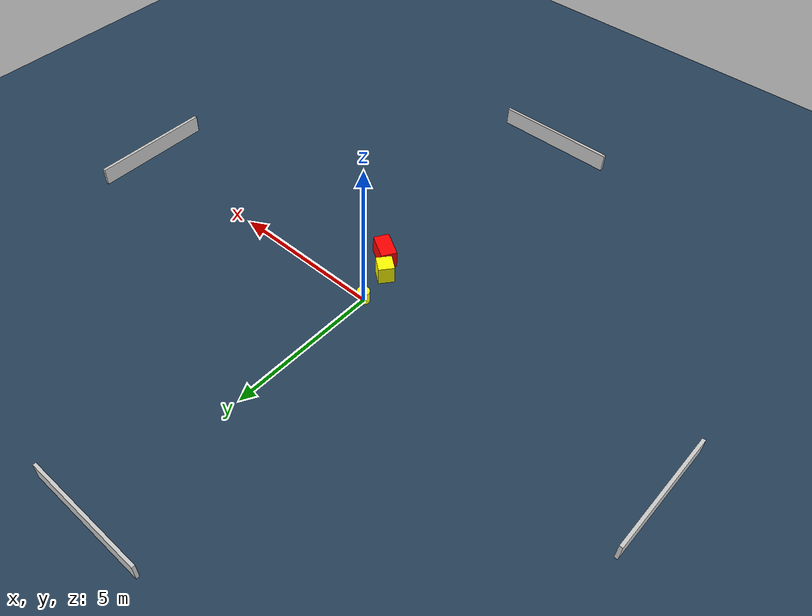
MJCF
<?xml version="1.0" ?>
<mujoco model="generated_environment">
  <option timestep="0.01" integrator="RK4" cone="elliptic"/>
  <default>
    <geom density="1"/>
  </default>
  <asset>
    <texture builtin="gradient" height="3072" name="skybox" rgb1="0.3 0.5 0.7" rgb2="0 0 0" type="skybox" width="512"/>
    <texture builtin="checker" height="300" name="groundplane" rgb1="0.2 0.3 0.4" rgb2="0.1 0.2 0.3" type="2d" width="300"/>
    <material name="groundplane" reflectance="0.2" texrepeat="5 5" texture="groundplane"/>
  </asset>
  <worldbody>
    <light dir="0 0 -1" directional="true" pos="0 0 1.5"/>
    <geom condim="3" friction="0.5 0.005 0.001" material="groundplane" name="floor" pos="0 0 0" size="0 0 0.05" type="plane"/>
    <body name="walls">
      <geom name="wall_1" condim="4" pos="-10.0 0.0 0.3" rgba="0.800000011920929 0.800000011920929 0.800000011920929 1.0" size="0.05 2.0 0.3" type="box"/>
      <geom name="wall_2" condim="4" pos="10.0 0.0 0.3" rgba="0.800000011920929 0.800000011920929 0.800000011920929 1.0" size="0.05 2.0 0.3" type="box"/>
      <geom name="wall_3" condim="4" pos="0.0 -10.0 0.3" rgba="0.800000011920929 0.800000011920929 0.800000011920929 1.0" size="2.0 0.05 0.3" type="box"/>
      <geom name="wall_4" condim="4" pos="0.0 10.0 0.3" rgba="0.800000011920929 0.800000011920929 0.800000011920929 1.0" size="2.0 0.05 0.3" type="box"/>
    </body>
    <body name="robot">
      <joint name="joint_x" type="slide" pos="0 0 0" axis="1 0 0"/>
      <joint name="joint_y" type="slide" pos="0 0 0" axis="0 1 0"/>
      <geom name="robot" type="cylinder" pos="0.0 0.0 0.2" size="0.2 0.2 0.0" mass="5.0" friction="1.0 0.005 0.0001" condim="4" rgba="1.0 1.0 0.0 1.0"/>
    </body>
    <body name="obstacle_1_movable">
      <geom name="obstacle_1_movable" condim="4" pos="0.1662684461499528 -1.1506653807712102 0.3" euler="0 0 321.5027793103445" friction="0.0 0.005 0.001" rgba="1.0 1.0 0.0 1.0" size="0.2669758042358427 0.25289784926344133 0.3" type="box" mass="0.1"/>
      <joint type="free"/>
    </body>
    <body name="obstacle_2_static">
      <geom name="obstacle_2_static" condim="4" pos="0.6792918848473862 -1.7261399175859702 0.3" euler="0 0 328.6248438028201" friction="0.0 0.005 0.001" rgba="1.0 0.0 0.0 1.0" size="0.4329168362297552 0.2539348428558952 0.3" type="box"/>
    </body>
  </worldbody>
  <actuator>
    <motor name="actuator_x" joint="joint_x" gear="1" ctrlrange="-1 1"/>
    <motor name="actuator_y" joint="joint_y" gear="1" ctrlrange="-1 1"/>
  </actuator>
</mujoco>
